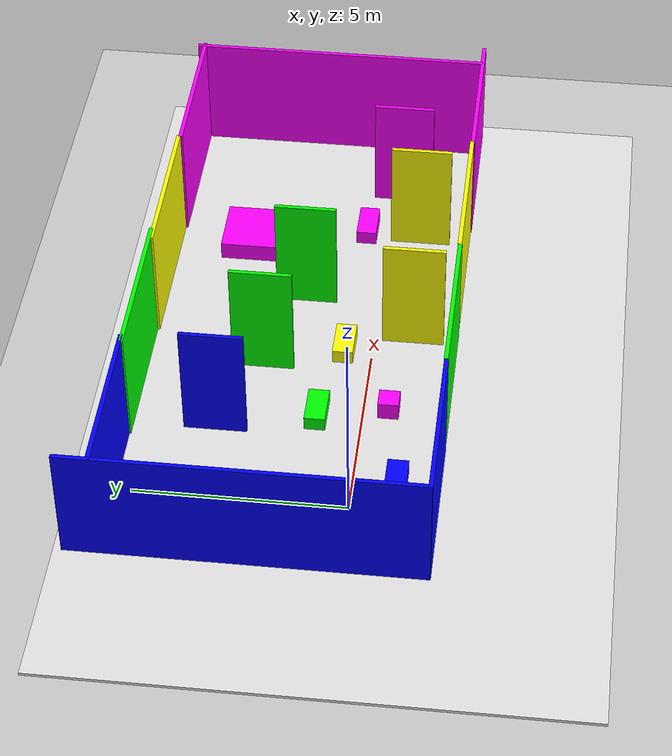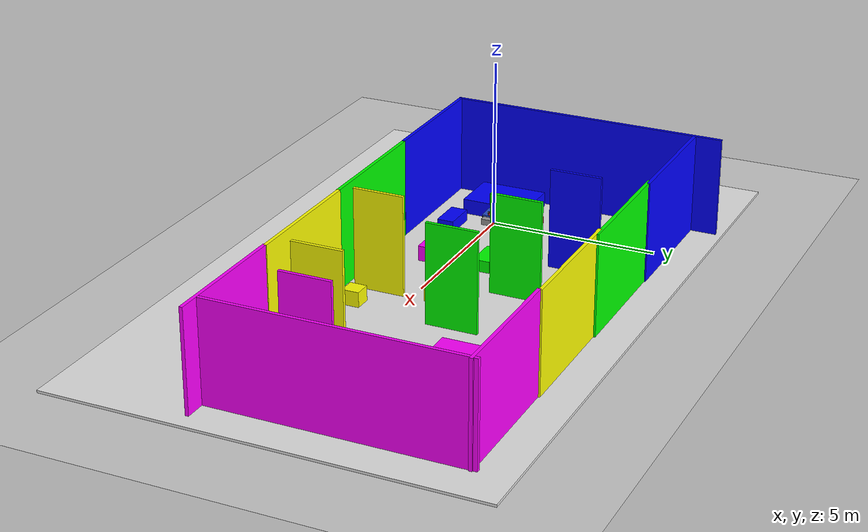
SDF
<sdf version="1.7">
 <world name="house_4_rooms">
  <model name="ground_plane">
   <static>1</static>
   <link name="link">
    <collision name="collision">
     <geometry><plane><normal>0 0 1</normal><size>100 100</size></plane></geometry>
     <surface><friction><ode><mu>100</mu><mu2>50</mu2></ode></friction></surface>
    </collision>
    <visual name="visual">
     <cast_shadows>0</cast_shadows>
     <geometry><plane><normal>0 0 1</normal><size>100 100</size></plane></geometry>
     <material>
      <script><uri>file://media/materials/scripts/gazebo.material</uri><name>Gazebo/Grey</name></script>
     </material>
    </visual>
   </link>
  </model>
  <model name="house_floor">
   <static>1</static>
   <link name="link">
    <collision name="collision"><geometry><box><size>20 12.5108 0.1</size></box></geometry></collision>
    <visual name="visual">
     <geometry><box><size>20 12.5108 0.1</size></box></geometry>
     <material><ambient>0.9 0.9 0.9 1</ambient><diffuse>0.9 0.9 0.9 1</diffuse></material>
    </visual>
   </link>
   <pose>4.43907 0.17493 0 0 -0 0</pose>
  </model>
  <model name="room1_wall1">
   <static>1</static>
   <link name="link">
    <collision name="collision_wall1"><geometry><box><size>4 0.1 3</size></box></geometry></collision>
    <visual name="visual_wall1">
     <geometry><box><size>4 0.1 3</size></box></geometry>
     <material><ambient>0 0 1 1</ambient></material>
    </visual>
   </link>
   <pose>0.019985 5.43003 1.5 0 -0 0</pose>
  </model>
  <model name="room1_wall2">
   <static>1</static>
   <link name="link">
    <collision name="collision_wall2"><geometry><box><size>4 0.1 3</size></box></geometry></collision>
    <visual name="visual_wall2">
     <geometry><box><size>4 0.1 3</size></box></geometry>
     <material><ambient>0 0 1 1</ambient></material>
    </visual>
   </link>
   <pose>0 -2 1.5 0 -0 0</pose>
  </model>
  <model name="room1_wall3">
   <static>1</static>
   <link name="link">
    <collision name="collision_wall3"><geometry><box><size>0.1 8.27232 3</size></box></geometry></collision>
    <visual name="visual_wall3">
     <geometry><box><size>0.1 8.27232 3</size></box></geometry>
     <material><ambient>0 0 1 1</ambient></material>
    </visual>
   </link>
   <pose>-1.95184 2.09981 1.5 0 -0 0</pose>
  </model>
  <model name="room1_wall4_with_door">
   <static>1</static>
   <link name="link">
    <collision name="wall_left"><geometry><box><size>0.1 1.5 3</size></box></geometry></collision>
    <collision name="wall_right"><geometry><box><size>0.1 1.5 3</size></box></geometry></collision>
    <visual name="wall_left_visual">
     <geometry><box><size>0.1 1.5 3</size></box></geometry>
     <material><ambient>0 0 1 1</ambient></material>
    </visual>
    <visual name="wall_right_visual">
     <geometry><box><size>0.1 1.5 3</size></box></geometry>
     <material><ambient>0 0 1 1</ambient></material>
    </visual>
   </link>
   <pose>2.19207 3.39902 1.5 0 -0 0</pose>
  </model>
  <model name="room1_bed">
   <static>1</static>
   <link name="link">
    <collision name="collision_bed"><geometry><box><size>1.5 2 0.5</size></box></geometry></collision>
    <visual name="visual_bed">
     <geometry><box><size>1.5 2 0.5</size></box></geometry>
     <material><ambient>0 0 1 1</ambient></material>
    </visual>
   </link>
   <pose>-0.952847 -0.09372 0.25 0 -0 0</pose>
  </model>
  <model name="room1_table">
   <static>1</static>
   <link name="link">
    <collision name="collision_table"><geometry><box><size>1 0.5 0.4</size></box></geometry></collision>
    <visual name="visual_table">
     <geometry><box><size>1 0.5 0.4</size></box></geometry>
     <material><ambient>0 0 1 1</ambient></material>
    </visual>
   </link>
   <pose>0.773278 -1.01452 0.2 0 -0 0</pose>
  </model>
  <model name="room1_chair">
   <static>1</static>
   <link name="link">
    <collision name="collision_chair"><geometry><box><size>0.5 0.5 0.5</size></box></geometry></collision>
    <visual name="visual_chair">
     <geometry><box><size>0.5 0.5 0.5</size></box></geometry>
     <material><ambient>1 0 0 1</ambient></material>
    </visual>
   </link>
   <pose>0.2346 1.31262 0.25 0 -0 0</pose>
  </model>
  <model name="room2_wall1">
   <static>1</static>
   <link name="link">
    <collision name="collision_wall1"><geometry><box><size>4 0.1 3</size></box></geometry></collision>
    <visual name="visual_wall1">
     <geometry><box><size>4 0.1 3</size></box></geometry>
     <material><ambient>0 1 0 1</ambient></material>
    </visual>
   </link>
   <pose>3.78838 5.39299 1.5 0 -0 0</pose>
  </model>
  <model name="room2_wall2">
   <static>1</static>
   <link name="link">
    <collision name="collision_wall2"><geometry><box><size>4 0.1 3</size></box></geometry></collision>
    <visual name="visual_wall2">
     <geometry><box><size>4 0.1 3</size></box></geometry>
     <material><ambient>0 1 0 1</ambient></material>
    </visual>
   </link>
   <pose>4.02261 -1.99039 1.5 0 -0 0</pose>
  </model>
  <model name="room2_wall3_with_door">
   <static>1</static>
   <link name="link">
    <collision name="wall_left"><geometry><box><size>0.1 1.5 3</size></box></geometry></collision>
    <collision name="wall_right"><geometry><box><size>0.1 1.5 3</size></box></geometry></collision>
    <visual name="wall_left_visual">
     <geometry><box><size>0.1 1.5 3</size></box></geometry>
     <material><ambient>0 1 0 1</ambient></material>
    </visual>
    <visual name="wall_right_visual">
     <geometry><box><size>0.1 1.5 3</size></box></geometry>
     <material><ambient>0 1 0 1</ambient></material>
    </visual>
   </link>
   <pose>4.44863 2.58313 1.5 0 -0 0</pose>
  </model>
  <model name="room2_wall4_with_door">
   <static>1</static>
   <link name="link">
    <collision name="wall_left"><geometry><box><size>0.1 1.5 3</size></box></geometry></collision>
    <collision name="wall_right"><geometry><box><size>0.1 1.5 3</size></box></geometry></collision>
    <visual name="wall_left_visual">
     <geometry><box><size>0.1 1.5 3</size></box></geometry>
     <material><ambient>0 1 0 1</ambient></material>
    </visual>
    <visual name="wall_right_visual">
     <geometry><box><size>0.1 1.5 3</size></box></geometry>
     <material><ambient>0 1 0 1</ambient></material>
    </visual>
   </link>
   <pose>6.94475 1.83122 1.5 0 -0 0</pose>
  </model>
  <model name="room2_table">
   <static>1</static>
   <link name="link">
    <collision name="collision_table"><geometry><box><size>1 0.5 0.4</size></box></geometry></collision>
    <visual name="visual_table">
     <geometry><box><size>1 0.5 0.4</size></box></geometry>
     <material><ambient>0 1 0 1</ambient></material>
    </visual>
   </link>
   <pose>2.88875 1.08287 0.2 0 -0 0</pose>
  </model>
  <model name="room2_chair">
   <static>1</static>
   <link name="link">
    <collision name="collision_chair"><geometry><box><size>0.5 0.5 0.5</size></box></geometry></collision>
    <visual name="visual_chair">
     <geometry><box><size>0.5 0.5 0.5</size></box></geometry>
     <material><ambient>1 0 1 1</ambient></material>
    </visual>
   </link>
   <pose>3.18692 -0.59866 0.25 0 -0 0</pose>
  </model>
  <model name="room3_wall1">
   <static>1</static>
   <link name="link">
    <collision name="collision_wall1"><geometry><box><size>4 0.1 3</size></box></geometry></collision>
    <visual name="visual_wall1">
     <geometry><box><size>4 0.1 3</size></box></geometry>
     <material><ambient>1 1 0 1</ambient></material>
    </visual>
   </link>
   <pose>7.42712 5.34013 1.5 0 -0 0</pose>
  </model>
  <model name="room3_wall2">
   <static>1</static>
   <link name="link">
    <collision name="collision_wall2"><geometry><box><size>4 0.1 3</size></box></geometry></collision>
    <visual name="visual_wall2">
     <geometry><box><size>4 0.1 3</size></box></geometry>
     <material><ambient>1 1 0 1</ambient></material>
    </visual>
   </link>
   <pose>8.00367 -1.97904 1.5 0 -0 0</pose>
  </model>
  <model name="room3_wall3_with_door">
   <static>1</static>
   <link name="link">
    <collision name="wall_left"><geometry><box><size>0.1 1.5 3</size></box></geometry></collision>
    <collision name="wall_right"><geometry><box><size>0.1 1.5 3</size></box></geometry></collision>
    <visual name="wall_left_visual">
     <geometry><box><size>0.1 1.5 3</size></box></geometry>
     <material><ambient>1 1 0 1</ambient></material>
    </visual>
    <visual name="wall_right_visual">
     <geometry><box><size>0.1 1.5 3</size></box></geometry>
     <material><ambient>1 1 0 1</ambient></material>
    </visual>
   </link>
   <pose>5.68781 -0.93752 1.5 0 -0 0</pose>
  </model>
  <model name="room3_wall4_with_door">
   <static>1</static>
   <link name="link">
    <collision name="wall_left"><geometry><box><size>0.1 1.5 3</size></box></geometry></collision>
    <collision name="wall_right"><geometry><box><size>0.1 1.5 3</size></box></geometry></collision>
    <visual name="wall_left_visual">
     <geometry><box><size>0.1 1.5 3</size></box></geometry>
     <material><ambient>1 1 0 1</ambient></material>
    </visual>
    <visual name="wall_right_visual">
     <geometry><box><size>0.1 1.5 3</size></box></geometry>
     <material><ambient>1 1 0 1</ambient></material>
    </visual>
   </link>
   <pose>9.45934 -0.773847 1.5 0 -0 0</pose>
  </model>
  <model name="room3_table">
   <static>1</static>
   <link name="link">
    <collision name="collision_table"><geometry><box><size>1 0.5 0.4</size></box></geometry></collision>
    <visual name="visual_table">
     <geometry><box><size>1 0.5 0.4</size></box></geometry>
     <material><ambient>1 1 0 1</ambient></material>
    </visual>
   </link>
   <pose>5.24623 0.690233 0.2 0 -0 0</pose>
  </model>
  <model name="room3_chair">
   <static>1</static>
   <link name="link">
    <collision name="collision_chair"><geometry><box><size>0.5 0.5 0.5</size></box></geometry></collision>
    <visual name="visual_chair">
     <geometry><box><size>0.5 0.5 0.5</size></box></geometry>
     <material><ambient>1 1 0 1</ambient></material>
    </visual>
   </link>
   <pose>6.63085 -1.22218 0.25 0 -0 0</pose>
  </model>
  <model name="room4_wall1">
   <static>1</static>
   <link name="link">
    <collision name="collision_wall1"><geometry><box><size>4 0.1 3</size></box></geometry></collision>
    <visual name="visual_wall1">
     <geometry><box><size>4 0.1 3</size></box></geometry>
     <material><ambient>1 0 1 1</ambient></material>
    </visual>
   </link>
   <pose>11.3836 5.29097 1.5 0 -0 0</pose>
  </model>
  <model name="room4_wall2">
   <static>1</static>
   <link name="link">
    <collision name="collision_wall2"><geometry><box><size>4 0.1 3</size></box></geometry></collision>
    <visual name="visual_wall2">
     <geometry><box><size>4 0.1 3</size></box></geometry>
     <material><ambient>1 0 1 1</ambient></material>
    </visual>
   </link>
   <pose>11.9613 -2.00039 1.5 0 -0 0</pose>
  </model>
  <model name="room4_wall3_with_door">
   <static>1</static>
   <link name="link">
    <collision name="wall_left"><geometry><box><size>0.1 1.5 3</size></box></geometry></collision>
    <visual name="wall_left_visual">
     <geometry><box><size>0.1 1.5 3</size></box></geometry>
     <material><ambient>1 0 1 1</ambient></material>
    </visual>
    <collision name="wall_right"><geometry><box><size>0.1 1.5 3</size></box></geometry></collision>
    <visual name="wall_right_visual">
     <geometry><box><size>0.1 1.5 3</size></box></geometry>
     <material><ambient>1 0 1 1</ambient></material>
    </visual>
   </link>
   <pose>11.163 -0.18178 1.5 0 -0 0</pose>
  </model>
  <model name="room4_wall4">
   <static>1</static>
   <link name="link">
    <collision name="collision_wall4"><geometry><box><size>0.1 7.48352 3</size></box></geometry></collision>
    <visual name="visual_wall4">
     <geometry><box><size>0.1 7.48352 3</size></box></geometry>
     <material><ambient>1 0 1 1</ambient></material>
    </visual>
   </link>
   <pose>13.2929 1.71939 1.5 0 -0 0</pose>
  </model>
  <model name="room4_bed">
   <static>1</static>
   <link name="link">
    <collision name="collision_bed"><geometry><box><size>1.5 2 0.5</size></box></geometry></collision>
    <visual name="visual_bed">
     <geometry><box><size>1.5 2 0.5</size></box></geometry>
     <material><ambient>1 0 1 1</ambient></material>
    </visual>
   </link>
   <pose>9.04296 3.19653 0.25 0 -0 0</pose>
  </model>
  <model name="room4_table">
   <static>1</static>
   <link name="link">
    <collision name="collision_table"><geometry><box><size>1 0.5 0.4</size></box></geometry></collision>
    <visual name="visual_table">
     <geometry><box><size>1 0.5 0.4</size></box></geometry>
     <material><ambient>1 0 1 1</ambient></material>
    </visual>
   </link>
   <pose>9.74578 0.595285 0.2 0 -0 0</pose>
  </model>
  <model name="room4_chair">
   <static>1</static>
   <link name="link">
    <collision name="collision_chair"><geometry><box><size>0.5 0.5 0.5</size></box></geometry></collision>
    <visual name="visual_chair">
     <geometry><box><size>0.5 0.5 0.5</size></box></geometry>
     <material><ambient>1 1 0.5 1</ambient></material>
    </visual>
   </link>
   <pose>10.5335 -1.06661 0.25 0 -0 0</pose>
  </model>
  <gravity>0 0 -9.8</gravity>
  <magnetic_field>6e-06 2.3e-05 -4.2e-05</magnetic_field>
  <atmosphere type="adiabatic"/>
  <physics type="ode">
   <max_step_size>0.001</max_step_size>
   <real_time_factor>1</real_time_factor>
   <real_time_update_rate>1000</real_time_update_rate>
  </physics>
  <scene><ambient>0.4 0.4 0.4 1</ambient><background>0.7 0.7 0.7 1</background><shadows>1</shadows></scene>
  <audio><device>default</device></audio>
  <spherical_coordinates>
   <surface_model>EARTH_WGS84</surface_model>
   <latitude_deg>0</latitude_deg>
   <longitude_deg>0</longitude_deg>
   <elevation>0</elevation>
   <heading_deg>0</heading_deg>
  </spherical_coordinates>
  <model name="robotic_chair">
   <link name="base_footprint">
    <inertial>
     <pose>-0.019676 0 0.185582 0 -0 0</pose>
     <mass>33.95</mass>
     <inertia>
      <ixx>1.56329</ixx>
      <ixy>-1.3653e-19</ixy>
      <ixz>0.383311</ixz>
      <iyy>2.12738</iyy>
      <iyz>5.24454e-19</iyz>
      <izz>2.00856</izz>
     </inertia>
    </inertial>
    <collision name="base_footprint_fixed_joint_lump__base_link_collision">
     <pose>0 0 0.11 0 -0 0</pose>
     <geometry><box><size>0.6 0.5 0.18</size></box></geometry>
    </collision>
    <collision name="base_footprint_fixed_joint_lump__camera_link_collision_1">
     <pose>0.32 0 0.46 0 -0 0</pose>
     <geometry><box><size>0.05 0.05 0.05</size></box></geometry>
    </collision>
    <collision name="base_footprint_fixed_joint_lump__front_left_caster_collision_2">
     <pose>0.25 0.2 0.05 0 -0 0</pose>
     <geometry><sphere><radius>0.05</radius></sphere></geometry>
     <surface>
      <contact><ode><kp>1e+06</kp><kd>100</kd></ode></contact>
      <friction><ode><mu>0</mu><mu2>0</mu2></ode></friction>
     </surface>
    </collision>
    <collision name="base_footprint_fixed_joint_lump__front_right_caster_collision_3">
     <pose>0.25 -0.2 0.05 0 -0 0</pose>
     <geometry><sphere><radius>0.05</radius></sphere></geometry>
     <surface>
      <contact><ode><kp>1e+06</kp><kd>100</kd></ode></contact>
      <friction><ode><mu>0</mu><mu2>0</mu2></ode></friction>
     </surface>
    </collision>
    <collision name="base_footprint_fixed_joint_lump__imu_link_collision_4">
     <pose>0 0 0.33 0 -0 0</pose>
     <geometry><cylinder><length>0.02</length><radius>0.03</radius></cylinder></geometry>
    </collision>
    <collision name="base_footprint_fixed_joint_lump__lidar_link_collision_5">
     <pose>0.25 0 0.39 0 -0 0</pose>
     <geometry><cylinder><length>0.06</length><radius>0.045</radius></cylinder></geometry>
    </collision>
    <collision name="base_footprint_fixed_joint_lump__seat_link_collision_6">
     <pose>0 0 0.31 0 -0 0</pose>
     <geometry><box><size>0.55 0.45 0.05</size></box></geometry>
    </collision>
    <collision name="base_footprint_fixed_joint_lump__backrest_link_collision_7">
     <pose>-0.3 0 0.61 0 -0 0</pose>
     <geometry><box><size>0.05 0.45 0.35</size></box></geometry>
    </collision>
    <visual name="base_footprint_fixed_joint_lump__base_link_visual">
     <pose>0 0 0.11 0 -0 0</pose>
     <geometry><box><size>0.6 0.5 0.18</size></box></geometry>
     <material>
      <script><name>Gazebo/Grey</name><uri>file://media/materials/scripts/gazebo.material</uri></script>
     </material>
    </visual>
    <visual name="base_footprint_fixed_joint_lump__camera_link_visual_1">
     <pose>0.32 0 0.46 0 -0 0</pose>
     <geometry><box><size>0.05 0.05 0.05</size></box></geometry>
     <material>
      <script><name>Gazebo/Black</name><uri>file://media/materials/scripts/gazebo.material</uri></script>
     </material>
    </visual>
    <visual name="base_footprint_fixed_joint_lump__front_left_caster_visual_2">
     <pose>0.25 0.2 0.05 0 -0 0</pose>
     <geometry><sphere><radius>0.05</radius></sphere></geometry>
     <material>
      <script><name>Gazebo/Grey</name><uri>file://media/materials/scripts/gazebo.material</uri></script>
     </material>
    </visual>
    <visual name="base_footprint_fixed_joint_lump__front_right_caster_visual_3">
     <pose>0.25 -0.2 0.05 0 -0 0</pose>
     <geometry><sphere><radius>0.05</radius></sphere></geometry>
     <material>
      <script><name>Gazebo/Grey</name><uri>file://media/materials/scripts/gazebo.material</uri></script>
     </material>
    </visual>
    <visual name="base_footprint_fixed_joint_lump__imu_link_visual_4">
     <pose>0 0 0.33 0 -0 0</pose>
     <geometry><cylinder><length>0.02</length><radius>0.03</radius></cylinder></geometry>
    </visual>
    <visual name="base_footprint_fixed_joint_lump__lidar_link_visual_5">
     <pose>0.25 0 0.39 0 -0 0</pose>
     <geometry><cylinder><length>0.06</length><radius>0.045</radius></cylinder></geometry>
     <material>
      <script><name>Gazebo/Red</name><uri>file://media/materials/scripts/gazebo.material</uri></script>
     </material>
    </visual>
    <visual name="base_footprint_fixed_joint_lump__seat_link_visual_6">
     <pose>0 0 0.31 0 -0 0</pose>
     <geometry><box><size>0.55 0.45 0.05</size></box></geometry>
     <material>
      <script><name>Gazebo/Blue</name><uri>file://media/materials/scripts/gazebo.material</uri></script>
     </material>
    </visual>
    <visual name="base_footprint_fixed_joint_lump__backrest_link_visual_7">
     <pose>-0.3 0 0.61 0 -0 0</pose>
     <geometry><box><size>0.05 0.45 0.35</size></box></geometry>
     <material>
      <script><name>Gazebo/Blue</name><uri>file://media/materials/scripts/gazebo.material</uri></script>
     </material>
    </visual>
    <sensor name="camera" type="camera">
     <update_rate>15</update_rate>
     <visualize>1</visualize>
     <camera>
      <horizontal_fov>1.396</horizontal_fov>
      <image><width>640</width><height>480</height><format>R8G8B8</format></image>
      <clip><near>0.05</near><far>50</far></clip>
      <noise><type>gaussian</type><mean>0</mean><stddev>0.007</stddev></noise>
     </camera>
     <plugin name="camera_controller" filename="libgazebo_ros_camera.so">
      <ros>
       <remapping>~/image_raw:=camera/image_raw</remapping>
       <remapping>~/camera_info:=camera/camera_info</remapping>
      </ros>
      <camera_name>camera</camera_name>
      <frame_name>camera_optical_link</frame_name>
     </plugin>
     <pose>0.32 0 0.46 0 -0 0</pose>
    </sensor>
    <sensor name="imu" type="imu">
     <always_on>1</always_on>
     <update_rate>100</update_rate>
     <visualize>1</visualize>
     <plugin name="imu_plugin" filename="libgazebo_ros_imu_sensor.so">
      <ros><remapping>~/out:=imu/data</remapping></ros>
      <initial_orientation_as_reference>0</initial_orientation_as_reference>
      <frame_name>imu_link</frame_name>
     </plugin>
     <pose>0 0 0.33 0 -0 0</pose>
    </sensor>
    <sensor name="lidar" type="ray">
     <visualize>1</visualize>
     <update_rate>15</update_rate>
     <ray>
      <scan>
       <horizontal>
        <samples>720</samples>
        <resolution>1</resolution>
        <min_angle>-3.14159</min_angle>
        <max_angle>3.14159</max_angle>
       </horizontal>
       <vertical><samples>1</samples><min_angle>0</min_angle><max_angle>0</max_angle></vertical>
      </scan>
      <range><min>0.12</min><max>12</max><resolution>0.01</resolution></range>
      <noise><type>gaussian</type><mean>0</mean><stddev>0.01</stddev></noise>
     </ray>
     <plugin name="gazebo_ros_laser" filename="libgazebo_ros_ray_sensor.so">
      <ros><remapping>~/out:=scan</remapping></ros>
      <frame_name>lidar_link</frame_name>
      <output_type>sensor_msgs/LaserScan</output_type>
     </plugin>
     <pose>0.25 0 0.39 0 -0 0</pose>
    </sensor>
   </link>
   <joint name="left_wheel_joint" type="revolute">
    <pose relative_to="base_footprint">0 0.27 0.11 0 -0 0</pose>
    <parent>base_footprint</parent>
    <child>left_wheel</child>
    <axis>
     <xyz>0 1 0</xyz>
     <limit><lower>-1e+16</lower><upper>1e+16</upper></limit>
     <dynamics><spring_reference>0</spring_reference><spring_stiffness>0</spring_stiffness></dynamics>
    </axis>
   </joint>
   <link name="left_wheel">
    <pose relative_to="left_wheel_joint">0 0 0 0 -0 0</pose>
    <inertial>
     <mass>2</mass>
     <inertia><ixx>0.0122</ixx><ixy>0</ixy><ixz>0</ixz><iyy>0.0122</iyy><iyz>0</iyz><izz>0.0121</izz></inertia>
    </inertial>
    <collision name="left_wheel_collision">
     <pose>0 0 0 1.5708 -0 0</pose>
     <geometry><cylinder><length>0.06</length><radius>0.11</radius></cylinder></geometry>
     <surface>
      <contact><ode><kp>1e+06</kp><kd>100</kd><max_vel>1</max_vel><min_depth>0.001</min_depth></ode></contact>
      <friction><ode><mu>1</mu><mu2>1</mu2></ode></friction>
     </surface>
    </collision>
    <visual name="left_wheel_visual">
     <pose>0 0 0 1.5708 -0 0</pose>
     <geometry><cylinder><length>0.06</length><radius>0.11</radius></cylinder></geometry>
     <material>
      <script><name>Gazebo/Black</name><uri>file://media/materials/scripts/gazebo.material</uri></script>
     </material>
    </visual>
   </link>
   <joint name="right_wheel_joint" type="revolute">
    <pose relative_to="base_footprint">0 -0.27 0.11 0 -0 0</pose>
    <parent>base_footprint</parent>
    <child>right_wheel</child>
    <axis>
     <xyz>0 1 0</xyz>
     <limit><lower>-1e+16</lower><upper>1e+16</upper></limit>
     <dynamics><spring_reference>0</spring_reference><spring_stiffness>0</spring_stiffness></dynamics>
    </axis>
   </joint>
   <link name="right_wheel">
    <pose relative_to="right_wheel_joint">0 0 0 0 -0 0</pose>
    <inertial>
     <mass>2</mass>
     <inertia><ixx>0.0122</ixx><ixy>0</ixy><ixz>0</ixz><iyy>0.0122</iyy><iyz>0</iyz><izz>0.0121</izz></inertia>
    </inertial>
    <collision name="right_wheel_collision">
     <pose>0 0 0 1.5708 -0 0</pose>
     <geometry><cylinder><length>0.06</length><radius>0.11</radius></cylinder></geometry>
     <surface>
      <contact><ode><kp>1e+06</kp><kd>100</kd><max_vel>1</max_vel><min_depth>0.001</min_depth></ode></contact>
      <friction><ode><mu>1</mu><mu2>1</mu2></ode></friction>
     </surface>
    </collision>
    <visual name="right_wheel_visual">
     <pose>0 0 0 1.5708 -0 0</pose>
     <geometry><cylinder><length>0.06</length><radius>0.11</radius></cylinder></geometry>
     <material>
      <script><name>Gazebo/Black</name><uri>file://media/materials/scripts/gazebo.material</uri></script>
     </material>
    </visual>
   </link>
   <plugin name="diff_drive_controller" filename="libgazebo_ros_diff_drive.so">
    <update_rate>50</update_rate>
    <left_joint>left_wheel_joint</left_joint>
    <right_joint>right_wheel_joint</right_joint>
    <wheel_separation>0.54</wheel_separation>
    <wheel_diameter>0.22</wheel_diameter>
    <max_wheel_torque>20</max_wheel_torque>
    <max_wheel_acceleration>1.0</max_wheel_acceleration>
    <command_topic>cmd_vel</command_topic>
    <odometry_topic>odom</odometry_topic>
    <odometry_frame>odom</odometry_frame>
    <robot_base_frame>base_footprint</robot_base_frame>
    <publish_odom>1</publish_odom>
    <publish_odom_tf>1</publish_odom_tf>
    <publish_wheel_tf>1</publish_wheel_tf>
   </plugin>
   <static>0</static>
   <plugin name="gazebo_ros_joint_state_publisher" filename="libgazebo_ros_joint_state_publisher.so">
    <update_rate>50</update_rate>
    <joint_name>left_wheel_joint</joint_name>
    <joint_name>right_wheel_joint</joint_name>
   </plugin>
   <pose>0.096518 8.8e-05 0.056944 2e-06 0.026395 -1e-05</pose>
  </model>
 </world>
</sdf>
